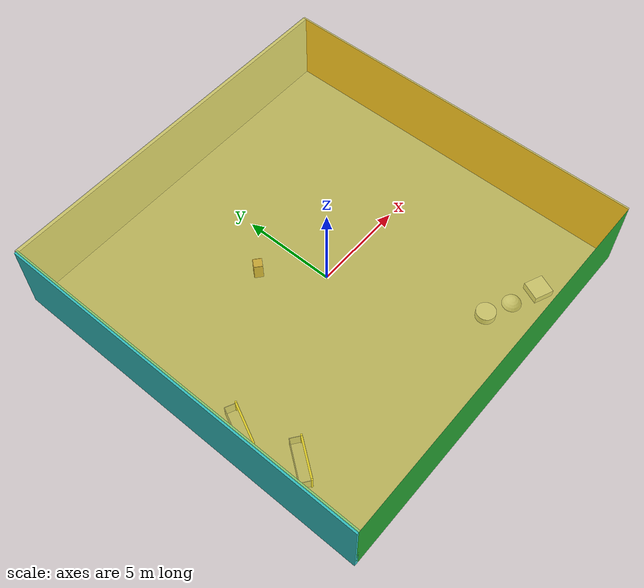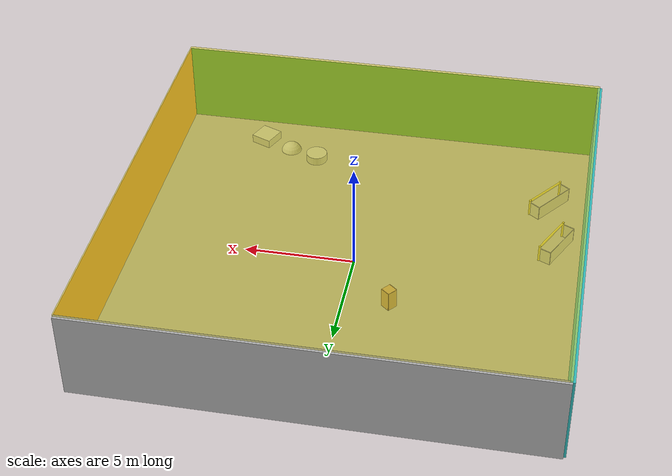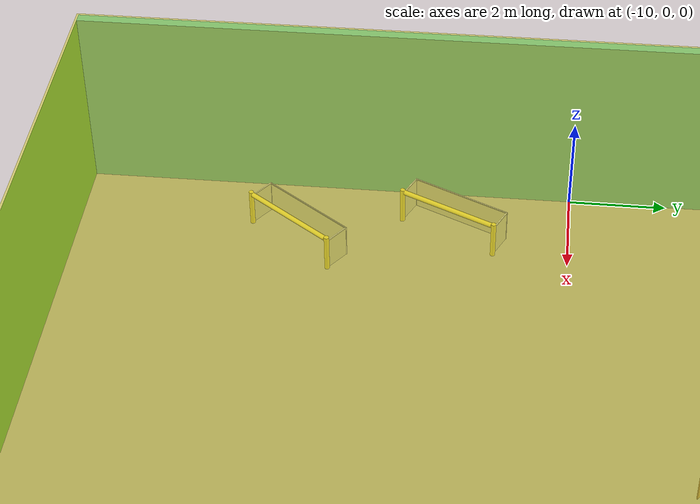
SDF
<sdf version="1.4">
 <world name="default">
  <physics type="ode">
   <max_step_size>0.001</max_step_size>
   <real_time_factor>1</real_time_factor>
   <real_time_update_rate>1000</real_time_update_rate>
   <gravity>0 0 -9.8</gravity>
  </physics>
  <scene><ambient>0.4 0.4 0.4 1</ambient><background>0.7 0.7 0.7 1</background><shadows>1</shadows></scene>
  <model name="Surrounding">
   <static>1</static>
   <link name="Ceiling">
    <collision name="Ceiling_Collision"><geometry><box><size>20 20 0.1</size></box></geometry></collision>
    <visual name="Ceiling_Visual">
     <geometry><box><size>20 20 0.1</size></box></geometry>
     <material>
      <script>
       <uri>file://media/materials/scripts/gazebo.material</uri>
       <name>Gazebo/YellowTransparent</name>
      </script>
     </material>
    </visual>
    <pose>0 0 4.05 0 0 0</pose>
   </link>
   <link name="Wall_South">
    <collision name="Wall_South_Collision">
     <geometry><box><size>20 0 4</size></box></geometry>
     <pose>0 0 2 0 -0 0</pose>
    </collision>
    <visual name="Wall_South_Visual">
     <pose>0 0 2 0 -0 0</pose>
     <geometry><box><size>20 0 4</size></box></geometry>
     <material>
      <script><uri>file://media/materials/scripts/gazebo.material</uri><name>Gazebo/Green</name></script>
     </material>
    </visual>
    <velocity_decay><linear>0</linear><angular>0</angular></velocity_decay>
    <pose>0 -10 0 0 -0 0</pose>
   </link>
   <link name="Wall_East">
    <collision name="Wall_21_Collision">
     <geometry><box><size>20 0 4</size></box></geometry>
     <pose>0 0 2 0 -0 0</pose>
    </collision>
    <visual name="Wall_21_Visual">
     <pose>0 0 2 0 -0 0</pose>
     <geometry><box><size>20 0 4</size></box></geometry>
     <material>
      <script><uri>file://media/materials/scripts/gazebo.material</uri><name>Gazebo/Orange</name></script>
     </material>
    </visual>
    <velocity_decay><linear>0</linear><angular>0</angular></velocity_decay>
    <pose>10 0 0 0 -0 1.5708</pose>
   </link>
   <link name="Wall_North">
    <collision name="Wall_22_Collision">
     <geometry><box><size>20 0.2 4</size></box></geometry>
     <pose>0 0 2 0 -0 0</pose>
    </collision>
    <visual name="Wall_22_Visual">
     <pose>0 0 2 0 -0 0</pose>
     <geometry><box><size>20 0.2 4</size></box></geometry>
     <material>
      <script><uri>file://media/materials/scripts/gazebo.material</uri><name>Gazebo/LightOn</name></script>
     </material>
    </visual>
    <velocity_decay><linear>0</linear><angular>0</angular></velocity_decay>
    <pose>0 10 0 0 -0 0</pose>
   </link>
   <link name="Wall_West">
    <collision name="Wall_23_Collision">
     <geometry><box><size>20 0.2 4</size></box></geometry>
     <pose>0 0 2 0 -0 0</pose>
    </collision>
    <visual name="Wall_23_Visual">
     <pose>0 0 2 0 -0 0</pose>
     <geometry><box><size>20 0.2 4</size></box></geometry>
     <material>
      <script><uri>file://media/materials/scripts/gazebo.material</uri><name>Gazebo/TurquoiseGlow</name></script>
     </material>
    </visual>
    <velocity_decay><linear>0</linear><angular>0</angular></velocity_decay>
    <pose>-10 0 0 0 0 -1.5708</pose>
   </link>
   <link name="Ground_link">
    <collision name="collision">
     <pose>0 0 .05 0 -0 0</pose>
     <geometry><box><size>20 20 0.1</size></box></geometry>
    </collision>
    <visual name="visual">
     <pose>0 0 .05 0 -0 0</pose>
     <geometry><box><size>20 20 0.1</size></box></geometry>
     <material>
      <script><uri>file://media/materials/scripts/gazebo.material</uri><name>Gazebo/GreyGradientSky</name></script>
     </material>
    </visual>
   </link>
   <static>1</static>
  </model>
  <spherical_coordinates>
   <surface_model>EARTH_WGS84</surface_model>
   <latitude_deg>0</latitude_deg>
   <longitude_deg>0</longitude_deg>
   <elevation>0</elevation>
   <heading_deg>0</heading_deg>
  </spherical_coordinates>
  <light name="lightball_0" type="diffuse">
   <diffuse>0.8 0.8 0.8 1</diffuse>
   <specular>0.2 0.2 0.2 1</specular>
   <attenuation>
    <range>100</range>
    <constant>0.7</constant>
    <linear>0.01</linear>
    <quadratic>0.001</quadratic>
   </attenuation>
   <direction>-0.5 0.1 -0.9</direction>
   <pose>4.99673283227 -7.53474974625 2.99977925697 0 0 0</pose>
  </light>
  <light name="lightball_1" type="diffuse">
   <diffuse>0.8 0.8 0.8 1</diffuse>
   <specular>0.2 0.2 0.2 1</specular>
   <attenuation>
    <range>100</range>
    <constant>0.7</constant>
    <linear>0.01</linear>
    <quadratic>0.001</quadratic>
   </attenuation>
   <direction>-0.5 0.1 -0.9</direction>
   <pose>2.34150034141 1.19269554869 1.87880342077 0 0 0</pose>
  </light>
  <light name="lightball_2" type="diffuse">
   <diffuse>0.8 0.8 0.8 1</diffuse>
   <specular>0.2 0.2 0.2 1</specular>
   <attenuation>
    <range>100</range>
    <constant>0.7</constant>
    <linear>0.01</linear>
    <quadratic>0.001</quadratic>
   </attenuation>
   <direction>-0.5 0.1 -0.9</direction>
   <pose>8.95933352144 3.87688109441 1.6426714364 0 0 0</pose>
  </light>
  <light name="lightball_3" type="diffuse">
   <diffuse>0.8 0.8 0.8 1</diffuse>
   <specular>0.2 0.2 0.2 1</specular>
   <attenuation>
    <range>100</range>
    <constant>0.7</constant>
    <linear>0.01</linear>
    <quadratic>0.001</quadratic>
   </attenuation>
   <direction>-0.5 0.1 -0.9</direction>
   <pose>2.75636260818 -7.27956261061 2.3560776408 0 0 0</pose>
  </light>
  <light name="lightball_4" type="diffuse">
   <diffuse>0.8 0.8 0.8 1</diffuse>
   <specular>0.2 0.2 0.2 1</specular>
   <attenuation>
    <range>100</range>
    <constant>0.7</constant>
    <linear>0.01</linear>
    <quadratic>0.001</quadratic>
   </attenuation>
   <direction>-0.5 0.1 -0.9</direction>
   <pose>-4.34968061994 -6.08489350905 1.01899658591 0 0 0</pose>
  </light>
  <include>
   <uri>model://robocup_3Dsim_goal</uri>
   <pose>-8.01805435377 -5.61462058663 0 0 0 2.50149167694</pose>
  </include>
  <include>
   <uri>model://robocup_3Dsim_goal</uri>
   <pose>-8.54758988923 -2.45617295799 0 0 0 2.69611249229</pose>
  </include>
  <include><uri>model://cabinet</uri><pose>-2.0166950114 2.69962523094 0 0 0 2.44185702157</pose></include>
  <include>
   <uri>model://textured_shapes</uri>
   <pose>4.56624061976 -7.82424190144 0 0 0 1.16904380617</pose>
  </include>
 </world>
</sdf>

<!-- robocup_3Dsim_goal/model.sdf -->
<sdf version="1.5">
  <model name="robocup_3d_goal">
    <static>true</static>
    <link name="left_post">
      <pose>0 1.05 0.45 0 0 0</pose>
      <collision name="collision">
        <geometry>
          <cylinder>
            <radius>0.05</radius>
            <length>0.9</length>
          </cylinder>
        </geometry>
      </collision>
      <visual name="visual">
        <geometry>
          <cylinder>
            <radius>0.05</radius>
            <length>0.9</length>
          </cylinder>
        </geometry>
        <material>
          <script>
            <uri>file://media/materials/scripts/gazebo.material</uri>
            <name>Gazebo/ZincYellow</name>
          </script>
        </material>
      </visual>
    </link>
    <link name="left_support_horiz_lower">
      <pose>0.30 1.05 0.01 0 0 0</pose>
      <collision name="collision">
        <geometry>
          <box>
            <size>0.50 0.02 0.02</size>
          </box>
        </geometry>
      </collision>
      <visual name="visual">
        <geometry>
          <box>
            <size>0.50 0.02 0.02</size>
          </box>
        </geometry>
        <material>
          <script>
            <uri>file://media/materials/scripts/gazebo.material</uri>
            <name>Gazebo/White</name>
          </script>
        </material>
      </visual>
    </link>
    <link name="left_support_horiz_upper">
      <pose>0.30 1.05 0.79 0 0 0</pose>
      <collision name="collision">
        <geometry>
          <box>
            <size>0.50 0.02 0.02</size>
          </box>
        </geometry>
      </collision>
      <visual name="visual">
        <geometry>
          <box>
            <size>0.50 0.02 0.02</size>
          </box>
        </geometry>
        <material>
          <script>
            <uri>file://media/materials/scripts/gazebo.material</uri>
            <name>Gazebo/White</name>
          </script>
        </material>
      </visual>
    </link>
    <link name="left_support_vertical">
      <pose>0.56 1.05 0.4 0 1.5708 0</pose>
      <collision name="collision">
        <geometry>
          <box>
            <size>0.80 0.02 0.02</size>
          </box>
        </geometry>
      </collision>
      <visual name="visual">
        <geometry>
          <box>
            <size>0.80 0.02 0.02</size>
          </box>
        </geometry>
        <material>
          <script>
            <uri>file://media/materials/scripts/gazebo.material</uri>
            <name>Gazebo/White</name>
          </script>
        </material>
      </visual>
    </link>
    <link name="right_support_horiz_lower">
      <pose>0.30 -1.05 0.01 0 0 0</pose>
      <collision name="collision">
        <geometry>
          <box>
            <size>0.50 0.02 0.02</size>
          </box>
        </geometry>
      </collision>
      <visual name="visual">
        <geometry>
          <box>
            <size>0.50 0.02 0.02</size>
          </box>
        </geometry>
        <material>
          <script>
            <uri>file://media/materials/scripts/gazebo.material</uri>
            <name>Gazebo/White</name>
          </script>
        </material>
      </visual>
    </link>
    <link name="right_support_horiz_upper">
      <pose>0.30 -1.05 0.79 0 0 0</pose>
      <collision name="collision">
        <geometry>
          <box>
            <size>0.50 0.02 0.02</size>
          </box>
        </geometry>
      </collision>
      <visual name="visual">
        <geometry>
          <box>
            <size>0.50 0.02 0.02</size>
          </box>
        </geometry>
        <material>
          <script>
            <uri>file://media/materials/scripts/gazebo.material</uri>
            <name>Gazebo/White</name>
          </script>
        </material>
      </visual>
    </link>
    <link name="right_support_vertical">
      <pose>0.56 -1.05 0.4 0 1.5708 0</pose>
      <collision name="collision">
        <geometry>
          <box>
            <size>0.80 0.02 0.02</size>
          </box>
        </geometry>
      </collision>
      <visual name="visual">
        <geometry>
          <box>
            <size>0.80 0.02 0.02</size>
          </box>
        </geometry>
        <material>
          <script>
            <uri>file://media/materials/scripts/gazebo.material</uri>
            <name>Gazebo/White</name>
          </script>
        </material>
      </visual>
    </link>
    <link name="center_support_horiz_lower">
      <pose>0.56 0 0.01 0 1.5708 0</pose>
      <collision name="collision">
        <geometry>
          <box>
            <size>0.02 2.08 0.02</size>
          </box>
        </geometry>
      </collision>
      <visual name="visual">
        <geometry>
          <box>
            <size>0.02 2.08 0.02</size>
          </box>
        </geometry>
        <material>
          <script>
            <uri>file://media/materials/scripts/gazebo.material</uri>
            <name>Gazebo/White</name>
          </script>
        </material>
      </visual>
    </link>
    <link name="center_support_horiz_upper">
      <pose>0.56 0 0.79 0 1.5708 0</pose>
      <collision name="collision">
        <geometry>
          <box>
            <size>0.02 2.08 0.02</size>
          </box>
        </geometry>
      </collision>
      <visual name="visual">
        <geometry>
          <box>
            <size>0.02 2.08 0.02</size>
          </box>
        </geometry>
        <material>
          <script>
            <uri>file://media/materials/scripts/gazebo.material</uri>
            <name>Gazebo/White</name>
          </script>
        </material>
      </visual>
    </link>
    <link name="right_post">
      <pose>0 -1.05 0.45 0 0 0</pose>
      <collision name="collision">
        <geometry>
          <cylinder>
            <radius>0.05</radius>
            <length>0.9</length>
          </cylinder>
        </geometry>
      </collision>
      <visual name="visual">
        <geometry>
          <cylinder>
            <radius>0.05</radius>
            <length>0.9</length>
          </cylinder>
        </geometry>
        <material>
          <script>
            <uri>file://media/materials/scripts/gazebo.material</uri>
            <name>Gazebo/ZincYellow</name>
          </script>
        </material>
      </visual>
    </link>
    <link name="crossbar">
      <pose>0 0 0.85 1.57 1.57 0</pose>
      <collision name="collision">
        <geometry>
          <cylinder>
            <radius>0.05</radius>
            <length>2.0</length>
          </cylinder>
        </geometry>
      </collision>
      <visual name="visual">
        <geometry>
          <cylinder>
            <radius>0.05</radius>
            <length>2.0</length>
          </cylinder>
        </geometry>
        <material>
          <script>
            <uri>file://media/materials/scripts/gazebo.material</uri>
            <name>Gazebo/ZincYellow</name>
          </script>
        </material>
      </visual>
    </link>
    <link name="center_net">
      <pose>0.56 0 0.40 0 0 0</pose>
      <collision name="collision">
        <geometry>
          <box>
            <size>0.01 2.1 0.80</size>
          </box>
        </geometry>
      </collision>
      <visual name="visual">
        <geometry>
          <box>
            <size>0.01 2.1 0.80</size>
          </box>
        </geometry>
        <material>
          <script>
            <uri>model://../model_source/models/robocup09_spl_field/materials/scripts/</uri>
            <uri>model://../model_source/models/robocup09_spl_field/materials/textures/</uri>
            <name>RoboCup/Net</name>
          </script>
        </material>
      </visual>
    </link>
    <link name="left_net">
      <pose>0.30 1.05 0.40 0 0 0</pose>
      <collision name="collision">
        <geometry>
          <box>
            <size>0.50 0.01 0.76</size>
          </box>
        </geometry>
      </collision>
      <visual name="visual">
        <geometry>
          <box>
            <size>0.50 0.01 0.76</size>
          </box>
        </geometry>
        <material>
          <script>
            <uri>model://../model_source/models/robocup09_spl_field/materials/scripts/</uri>
            <uri>model://../model_source/models/robocup09_spl_field/materials/textures/</uri>
            <name>RoboCup/Net</name>
          </script>
        </material>
      </visual>
    </link>
    <link name="right_net">
      <pose>0.30 -1.05 0.40 0 0 0</pose>
      <collision name="collision">
        <geometry>
          <box>
            <size>0.50 0.01 0.76</size>
          </box>
        </geometry>
      </collision>
      <visual name="visual">
        <geometry>
          <box>
            <size>0.50 0.01 0.76</size>
          </box>
        </geometry>
        <material>
          <script>
            <uri>model://../model_source/models/robocup09_spl_field/materials/scripts/</uri>
            <uri>model://../model_source/models/robocup09_spl_field/materials/textures/</uri>
            <name>RoboCup/Net</name>
          </script>
        </material>
      </visual>
    </link>
  </model>
</sdf>

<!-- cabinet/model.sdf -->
<sdf version="1.5">
  <model name="cabinet">
    <static>true</static>
    <link name="cabinet_bottom_plate">
      <inertial>
        <pose>0 0 -1 0 0 0</pose>
        <inertia>
          <ixx>2.050000</ixx>
          <ixy>0</ixy>
          <ixz>0</ixz>
          <iyy>2.050000</iyy>
          <iyz>0</iyz>
          <izz>2.050000</izz>
        </inertia>
        <mass>25.000000</mass>
      </inertial>
      <collision name="cabinet_bottom_plate_geom">
        <pose>0 0 0.010000 0 0 0</pose>
        <geometry>
          <box>
            <size>0.450000 0.450000 0.020000</size>
          </box>
        </geometry>
      </collision>
      <visual name="cabinet_bottom_plate_geom_visual">
        <pose>0 0 0.010000 0 0 0</pose>
        <geometry>
          <box>
            <size>0.450000 0.450000 0.020000</size>
          </box>
        </geometry>
        <material>
          <script>
            <uri>model://media/materials/scripts/gazebo.material</uri>
            <name>Gazebo/Wood</name>
          </script>
        </material>
      </visual>
      <collision name="cabinet_bottom_plate_geom_cabinet_back_plate">
        <pose>0.235000 0 0.510000 0 0 0</pose>
        <geometry>
          <box>
            <size>0.020000 0.450000 1.020000</size>
          </box>
        </geometry>
      </collision>
      <visual name="cabinet_bottom_plate_geom_cabinet_back_plate_visual">
        <pose>0.235000 0 0.510000 0 0 0</pose>
        <geometry>
          <box>
            <size>0.020000 0.450000 1.020000</size>
          </box>
        </geometry>
        <material>
          <script>
            <uri>model://media/materials/scripts/gazebo.material</uri>
            <name>Gazebo/Wood</name>
          </script>
        </material>
      </visual>
      <collision name="cabinet_bottom_plate_geom_cabinet_left_plate">
        <pose>0 0.235000 0.510000 0 0 0</pose>
        <geometry>
          <box>
            <size>0.450000 0.020000 1.020000</size>
          </box>
        </geometry>
      </collision>
      <visual name="cabinet_bottom_plate_geom_cabinet_left_plate_visual">
        <pose>0 0.235000 0.510000 0 0 0</pose>
        <geometry>
          <box>
            <size>0.450000 0.020000 1.020000</size>
          </box>
        </geometry>
        <material>
          <script>
            <uri>model://media/materials/scripts/gazebo.material</uri>
            <name>Gazebo/Wood</name>
          </script>
        </material>
      </visual>
      <collision name="cabinet_bottom_plate_geom_cabinet_middle_plate">
        <pose>0 0 0.510000 0 0 0</pose>
        <geometry>
          <box>
            <size>0.450000 0.450000 0.020000</size>
          </box>
        </geometry>
      </collision>
      <visual name="cabinet_bottom_plate_geom_cabinet_middle_plate_visual">
        <pose>0 0 0.510000 0 0 0</pose>
        <geometry>
          <box>
            <size>0.450000 0.450000 0.020000</size>
          </box>
        </geometry>
        <material>
          <script>
            <uri>model://media/materials/scripts/gazebo.material</uri>
            <name>Gazebo/Wood</name>
          </script>
        </material>
      </visual>
      <collision name="cabinet_bottom_plate_geom_cabinet_right_plate">
        <pose>0 -0.235000 0.510000 0 0 0</pose>
        <geometry>
          <box>
            <size>0.450000 0.020000 1.020000</size>
          </box>
        </geometry>
      </collision>
      <visual name="cabinet_bottom_plate_geom_cabinet_right_plate_visual">
        <pose>0 -0.235000 0.510000 0 0 0</pose>
        <geometry>
          <box>
            <size>0.450000 0.020000 1.020000</size>
          </box>
        </geometry>
        <material>
          <script>
            <uri>model://media/materials/scripts/gazebo.material</uri>
            <name>Gazebo/Wood</name>
          </script>
        </material>
      </visual>
      <collision name="cabinet_bottom_plate_geom_cabinet_top_plate">
        <pose>0 0 1.010000 0 0 0</pose>
        <geometry>
          <box>
            <size>0.450000 0.450000 0.020000</size>
          </box>
        </geometry>
      </collision>
      <visual name="cabinet_bottom_plate_geom_cabinet_top_plate_visual">
        <pose>0 0 1.010000 0 0 0</pose>
        <geometry>
          <box>
            <size>0.450000 0.450000 0.020000</size>
          </box>
        </geometry>
        <material>
          <script>
            <uri>model://media/materials/scripts/gazebo.material</uri>
            <name>Gazebo/Wood</name>
          </script>
        </material>
      </visual>
    </link>
  </model>
</sdf>

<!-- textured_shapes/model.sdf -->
<sdf version="1.6">
  <model name="textured_shapes">
    <pose>0 0 0.5 0 0 0</pose>
    <link name="box">
      <pose>0 -1.5 0 0 0 0</pose>
      <collision name="collision">
        <geometry>
          <box>
            <size>1 1 1</size>
          </box>
        </geometry>
      </collision>
      <visual name="visual">
        <geometry>
          <box>
            <size>1 1 1</size>
          </box>
        </geometry>
        <material>
          <script>
            <uri>model://../model_source/models/textured_shapes/materials/scripts</uri>
            <uri>model://../model_source/models/textured_shapes/materials/textures</uri>
            <name>TexturedShape/Squares</name>
          </script>
        </material>
      </visual>
    </link>
    <link name="sphere">
      <collision name="collision">
        <geometry>
          <sphere>
            <radius>0.5</radius>
          </sphere>
        </geometry>
      </collision>
      <visual name="visual">
        <geometry>
          <sphere>
            <radius>0.5</radius>
          </sphere>
        </geometry>
        <material>
          <script>
            <uri>model://../model_source/models/textured_shapes/materials/scripts</uri>
            <uri>model://../model_source/models/textured_shapes/materials/textures</uri>
            <name>TexturedShape/Squares</name>
          </script>
        </material>
      </visual>
    </link>
    <link name="cylinder">
      <pose>0 1.5 0 0 0 0</pose>
      <collision name="collision">
        <geometry>
          <cylinder>
            <radius>0.5</radius>
            <length>1</length>
          </cylinder>
        </geometry>
      </collision>
      <visual name="visual">
        <geometry>
          <cylinder>
            <radius>0.5</radius>
            <length>1</length>
          </cylinder>
        </geometry>
        <material>
          <script>
            <uri>model://../model_source/models/textured_shapes/materials/scripts</uri>
            <uri>model://../model_source/models/textured_shapes/materials/textures</uri>
            <name>TexturedShape/Squares</name>
          </script>
        </material>
      </visual>
    </link>
  </model>
</sdf>
